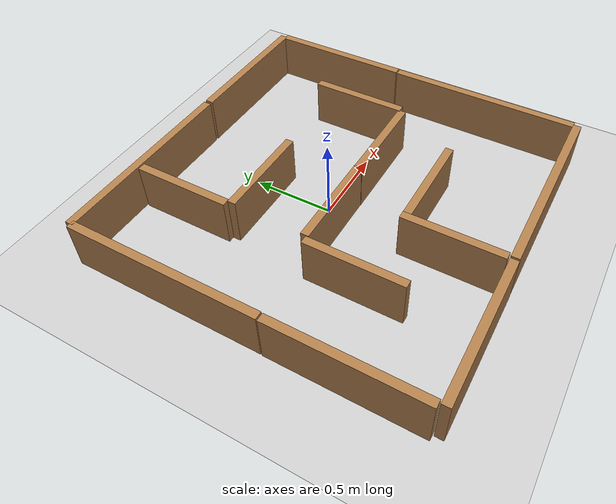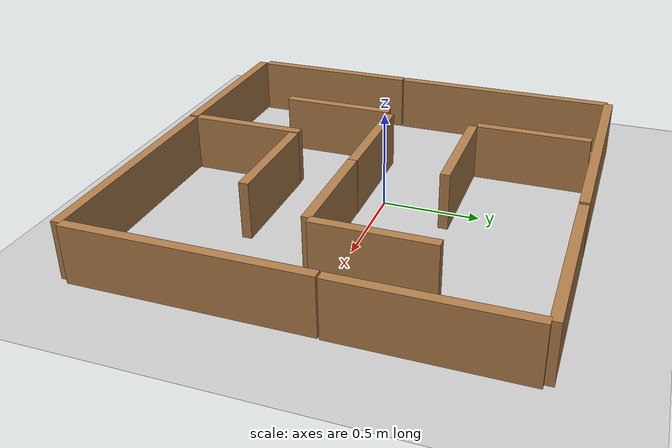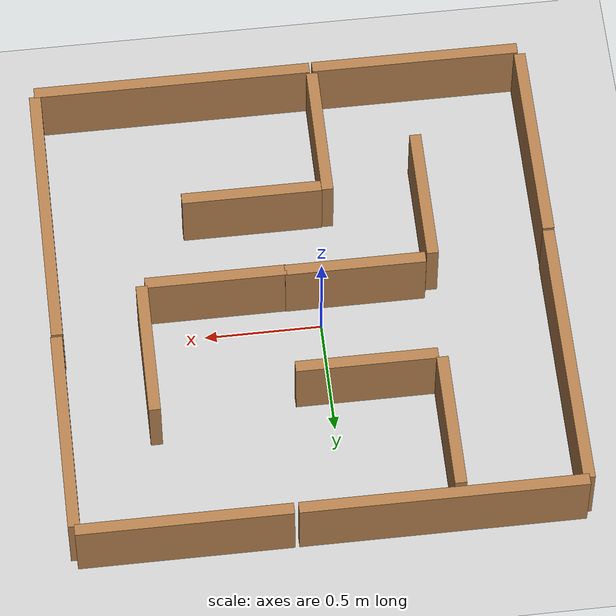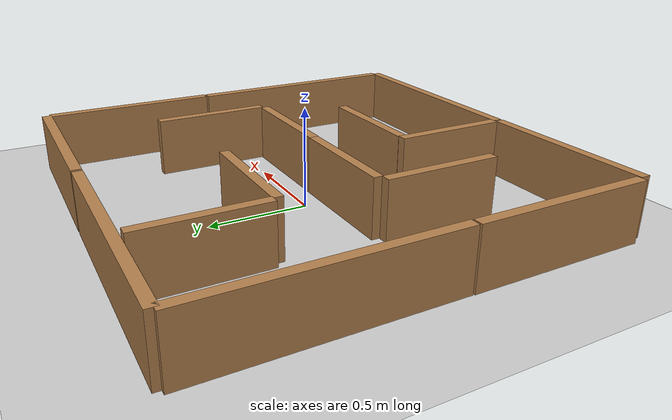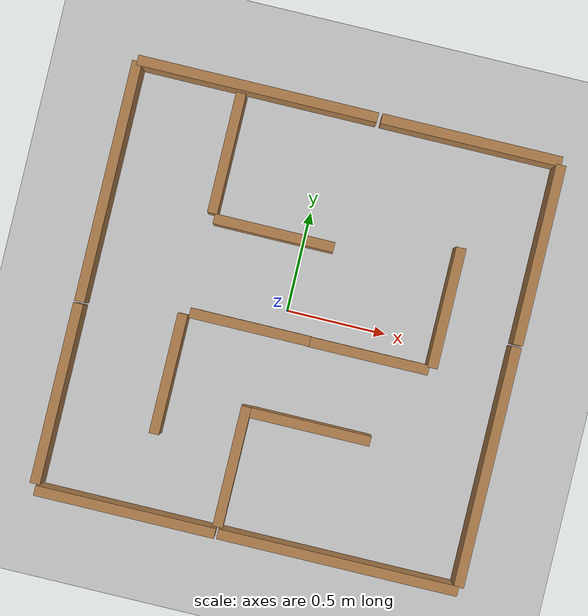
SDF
<sdf version="1.6">
 <world name="default">
  <light name="sun" type="directional">
   <pose>0 0 10 0 -0 0</pose>
   <diffuse>0.8 0.8 0.8 1</diffuse>
   <specular>0.2 0.2 0.2 1</specular>
   <attenuation>
    <range>1000</range>
    <constant>0.9</constant>
    <linear>0.01</linear>
    <quadratic>0.001</quadratic>
   </attenuation>
   <direction>-0.5 0.1 -0.9</direction>
  </light>
  <model name="ground_plane">
   <static>1</static>
   <link name="link">
    <collision name="collision">
     <geometry><plane><normal>0 0 1</normal><size>100 100</size></plane></geometry>
     <surface>
      <contact><collide_bitmask>65535</collide_bitmask></contact>
      <friction><ode><mu>100</mu><mu2>50</mu2></ode></friction>
     </surface>
    </collision>
    <visual name="visual">
     <cast_shadows>0</cast_shadows>
     <geometry><plane><normal>0 0 1</normal><size>100 100</size></plane></geometry>
     <material>
      <script><uri>file://media/materials/scripts/gazebo.material</uri><name>Gazebo/Grey</name></script>
     </material>
    </visual>
   </link>
  </model>
  <gravity>0 0 -9.8</gravity>
  <magnetic_field>6e-06 2.3e-05 -4.2e-05</magnetic_field>
  <atmosphere type="adiabatic"/>
  <physics name="default_physics" default="0" type="ode">
   <max_step_size>0.001</max_step_size>
   <real_time_factor>1</real_time_factor>
   <real_time_update_rate>1000</real_time_update_rate>
  </physics>
  <scene><ambient>0.4 0.4 0.4 1</ambient><background>0.7 0.7 0.7 1</background><shadows>1</shadows></scene>
  <spherical_coordinates>
   <surface_model>EARTH_WGS84</surface_model>
   <latitude_deg>0</latitude_deg>
   <longitude_deg>0</longitude_deg>
   <elevation>0</elevation>
   <heading_deg>0</heading_deg>
  </spherical_coordinates>
  <model name="wall0m60_1">
   <pose>-0.1495 0.352291 0 0 -0 0</pose>
   <link name="Wall_0">
    <collision name="Wall_0_Collision">
     <geometry><box><size>0.6 0.05 0.3</size></box></geometry>
     <pose>0 0 0.15 0 -0 0</pose>
    </collision>
    <visual name="Wall_0_Visual">
     <pose>0 0 0.15 0 -0 0</pose>
     <geometry><box><size>0.6 0.05 0.3</size></box></geometry>
     <material>
      <script><uri>file://media/materials/scripts/gazebo.material</uri><name>Gazebo/Wood</name></script>
      <ambient>1 1 1 1</ambient>
     </material>
     <meta><layer>0</layer></meta>
    </visual>
   </link>
   <static>1</static>
  </model>
  <model name="wall0m90_1">
   <pose>-0.537193 -1.1331 0 0 -0 0</pose>
   <link name="Wall_0">
    <collision name="Wall_0_Collision">
     <geometry><box><size>0.9 0.05 0.3</size></box></geometry>
     <pose>0 0 0.15 0 -0 0</pose>
    </collision>
    <visual name="Wall_0_Visual">
     <pose>0 0 0.15 0 -0 0</pose>
     <geometry><box><size>0.9 0.05 0.3</size></box></geometry>
     <material>
      <script><uri>file://media/materials/scripts/gazebo.material</uri><name>Gazebo/Wood</name></script>
      <ambient>1 1 1 1</ambient>
     </material>
     <meta><layer>0</layer></meta>
    </visual>
   </link>
   <static>1</static>
  </model>
  <model name="wall0m60_2">
   <pose>-0.463206 0.675222 0.003503 0 -0 1.57</pose>
   <link name="Wall_0">
    <collision name="Wall_0_Collision">
     <geometry><box><size>0.6 0.05 0.3</size></box></geometry>
     <pose>0 0 0.15 0 -0 0</pose>
    </collision>
    <visual name="Wall_0_Visual">
     <pose>0 0 0.15 0 -0 0</pose>
     <geometry><box><size>0.6 0.05 0.3</size></box></geometry>
     <material>
      <script><uri>file://media/materials/scripts/gazebo.material</uri><name>Gazebo/Wood</name></script>
      <ambient>1 1 1 1</ambient>
     </material>
     <meta><layer>0</layer></meta>
    </visual>
   </link>
   <static>1</static>
  </model>
  <model name="wall1m20">
   <pose>-0.390642 1.01382 0 0 -0 0</pose>
   <link name="Wall_0">
    <collision name="Wall_0_Collision">
     <geometry><box><size>1.2 0.05 0.3</size></box></geometry>
     <pose>0 0 0.15 0 -0 0</pose>
    </collision>
    <visual name="Wall_0_Visual">
     <pose>0 0 0.15 0 -0 0</pose>
     <geometry><box><size>1.2 0.05 0.3</size></box></geometry>
     <material>
      <script><uri>file://media/materials/scripts/gazebo.material</uri><name>Gazebo/Wood</name></script>
      <ambient>1 1 1 1</ambient>
     </material>
     <meta><layer>0</layer></meta>
    </visual>
   </link>
   <static>1</static>
  </model>
  <model name="wall1m20_0">
   <pose>-0.989789 0.407174 0 0 -0 1.57</pose>
   <link name="Wall_0">
    <collision name="Wall_0_Collision">
     <geometry><box><size>1.2 0.05 0.3</size></box></geometry>
     <pose>0 0 0.15 0 -0 0</pose>
    </collision>
    <visual name="Wall_0_Visual">
     <pose>0 0 0.15 0 -0 0</pose>
     <geometry><box><size>1.2 0.05 0.3</size></box></geometry>
     <material>
      <script><uri>file://media/materials/scripts/gazebo.material</uri><name>Gazebo/Wood</name></script>
      <ambient>1 1 1 1</ambient>
     </material>
     <meta><layer>0</layer></meta>
    </visual>
   </link>
   <static>1</static>
  </model>
  <model name="wall0m90">
   <pose>-0.992985 -0.651546 0 0 -0 1.57</pose>
   <link name="Wall_0">
    <collision name="Wall_0_Collision">
     <geometry><box><size>0.9 0.05 0.3</size></box></geometry>
     <pose>0 0 0.15 0 -0 0</pose>
    </collision>
    <visual name="Wall_0_Visual">
     <pose>0 0 0.15 0 -0 0</pose>
     <geometry><box><size>0.9 0.05 0.3</size></box></geometry>
     <material>
      <script><uri>file://media/materials/scripts/gazebo.material</uri><name>Gazebo/Wood</name></script>
      <ambient>1 1 1 1</ambient>
     </material>
     <meta><layer>0</layer></meta>
    </visual>
   </link>
   <static>1</static>
  </model>
  <model name="wall1m20_clone">
   <pose>0.525214 -1.13124 0 0 -0 0</pose>
   <link name="Wall_0">
    <collision name="Wall_0_Collision">
     <geometry><box><size>1.2 0.05 0.3</size></box></geometry>
     <pose>0 0 0.15 0 -0 0</pose>
    </collision>
    <visual name="Wall_0_Visual">
     <pose>0 0 0.15 0 -0 0</pose>
     <geometry><box><size>1.2 0.05 0.3</size></box></geometry>
     <material>
      <script><uri>file://media/materials/scripts/gazebo.material</uri><name>Gazebo/Wood</name></script>
      <ambient>1 1 1 1</ambient>
     </material>
     <meta><layer>0</layer></meta>
    </visual>
   </link>
   <static>1</static>
  </model>
  <model name="wall1m20_0_clone">
   <pose>1.1237 -0.51003 0 0 -0 1.57</pose>
   <link name="Wall_0">
    <collision name="Wall_0_Collision">
     <geometry><box><size>1.2 0.05 0.3</size></box></geometry>
     <pose>0 0 0.15 0 -0 0</pose>
    </collision>
    <visual name="Wall_0_Visual">
     <pose>0 0 0.15 0 -0 0</pose>
     <geometry><box><size>1.2 0.05 0.3</size></box></geometry>
     <material>
      <script><uri>file://media/materials/scripts/gazebo.material</uri><name>Gazebo/Wood</name></script>
      <ambient>1 1 1 1</ambient>
     </material>
     <meta><layer>0</layer></meta>
    </visual>
   </link>
   <static>1</static>
  </model>
  <model name="wall0m90_clone">
   <pose>1.12838 0.548991 0 0 -0 1.57</pose>
   <link name="Wall_0">
    <collision name="Wall_0_Collision">
     <geometry><box><size>0.9 0.05 0.3</size></box></geometry>
     <pose>0 0 0.15 0 -0 0</pose>
    </collision>
    <visual name="Wall_0_Visual">
     <pose>0 0 0.15 0 -0 0</pose>
     <geometry><box><size>0.9 0.05 0.3</size></box></geometry>
     <material>
      <script><uri>file://media/materials/scripts/gazebo.material</uri><name>Gazebo/Wood</name></script>
      <ambient>1 1 1 1</ambient>
     </material>
     <meta><layer>0</layer></meta>
    </visual>
   </link>
   <static>1</static>
  </model>
  <model name="wall0m90_1_clone">
   <pose>0.678095 1.01413 0 0 -0 0</pose>
   <link name="Wall_0">
    <collision name="Wall_0_Collision">
     <geometry><box><size>0.9 0.05 0.3</size></box></geometry>
     <pose>0 0 0.15 0 -0 0</pose>
    </collision>
    <visual name="Wall_0_Visual">
     <pose>0 0 0.15 0 -0 0</pose>
     <geometry><box><size>0.9 0.05 0.3</size></box></geometry>
     <material>
      <script><uri>file://media/materials/scripts/gazebo.material</uri><name>Gazebo/Wood</name></script>
      <ambient>1 1 1 1</ambient>
     </material>
     <meta><layer>0</layer></meta>
    </visual>
   </link>
   <static>1</static>
  </model>
  <model name="wall0m60_1_clone">
   <pose>-0.156378 -0.11924 0 0 -0 0</pose>
   <link name="Wall_0">
    <collision name="Wall_0_Collision">
     <geometry><box><size>0.6 0.05 0.3</size></box></geometry>
     <pose>0 0 0.15 0 -0 0</pose>
    </collision>
    <visual name="Wall_0_Visual">
     <pose>0 0 0.15 0 -0 0</pose>
     <geometry><box><size>0.6 0.05 0.3</size></box></geometry>
     <material>
      <script><uri>file://media/materials/scripts/gazebo.material</uri><name>Gazebo/Wood</name></script>
      <ambient>1 1 1 1</ambient>
     </material>
     <meta><layer>0</layer></meta>
    </visual>
   </link>
   <static>1</static>
  </model>
  <model name="wall0m60_2_clone">
   <pose>-0.488292 -0.431782 0.003503 0 -0 1.57</pose>
   <link name="Wall_0">
    <collision name="Wall_0_Collision">
     <geometry><box><size>0.6 0.05 0.3</size></box></geometry>
     <pose>0 0 0.15 0 -0 0</pose>
    </collision>
    <visual name="Wall_0_Visual">
     <pose>0 0 0.15 0 -0 0</pose>
     <geometry><box><size>0.6 0.05 0.3</size></box></geometry>
     <material>
      <script><uri>file://media/materials/scripts/gazebo.material</uri><name>Gazebo/Wood</name></script>
      <ambient>1 1 1 1</ambient>
     </material>
     <meta><layer>0</layer></meta>
    </visual>
   </link>
   <static>1</static>
  </model>
  <model name="wall0m60_2_clone_clone">
   <pose>-0.082463 -0.798387 0.003503 0 -0 1.57</pose>
   <link name="Wall_0">
    <collision name="Wall_0_Collision">
     <geometry><box><size>0.6 0.05 0.3</size></box></geometry>
     <pose>0 0 0.15 0 -0 0</pose>
    </collision>
    <visual name="Wall_0_Visual">
     <pose>0 0 0.15 0 -0 0</pose>
     <geometry><box><size>0.6 0.05 0.3</size></box></geometry>
     <material>
      <script><uri>file://media/materials/scripts/gazebo.material</uri><name>Gazebo/Wood</name></script>
      <ambient>1 1 1 1</ambient>
     </material>
     <meta><layer>0</layer></meta>
    </visual>
   </link>
   <static>1</static>
  </model>
  <model name="wall0m60_1_clone_clone">
   <pose>0.241686 -0.522213 0 0 -0 0</pose>
   <link name="Wall_0">
    <collision name="Wall_0_Collision">
     <geometry><box><size>0.6 0.05 0.3</size></box></geometry>
     <pose>0 0 0.15 0 -0 0</pose>
    </collision>
    <visual name="Wall_0_Visual">
     <pose>0 0 0.15 0 -0 0</pose>
     <geometry><box><size>0.6 0.05 0.3</size></box></geometry>
     <material>
      <script><uri>file://media/materials/scripts/gazebo.material</uri><name>Gazebo/Wood</name></script>
      <ambient>1 1 1 1</ambient>
     </material>
     <meta><layer>0</layer></meta>
    </visual>
   </link>
   <static>1</static>
  </model>
  <model name="wall0m60_1_clone_clone_0">
   <pose>0.436168 -0.120868 0 0 -0 0</pose>
   <link name="Wall_0">
    <collision name="Wall_0_Collision">
     <geometry><box><size>0.6 0.05 0.3</size></box></geometry>
     <pose>0 0 0.15 0 -0 0</pose>
    </collision>
    <visual name="Wall_0_Visual">
     <pose>0 0 0.15 0 -0 0</pose>
     <geometry><box><size>0.6 0.05 0.3</size></box></geometry>
     <material>
      <script><uri>file://media/materials/scripts/gazebo.material</uri><name>Gazebo/Wood</name></script>
      <ambient>1 1 1 1</ambient>
     </material>
     <meta><layer>0</layer></meta>
    </visual>
   </link>
   <static>1</static>
  </model>
  <model name="wall0m60_2_clone_clone_0">
   <pose>0.751033 0.194486 0.003503 0 -0 1.57</pose>
   <link name="Wall_0">
    <collision name="Wall_0_Collision">
     <geometry><box><size>0.6 0.05 0.3</size></box></geometry>
     <pose>0 0 0.15 0 -0 0</pose>
    </collision>
    <visual name="Wall_0_Visual">
     <pose>0 0 0.15 0 -0 0</pose>
     <geometry><box><size>0.6 0.05 0.3</size></box></geometry>
     <material>
      <script><uri>file://media/materials/scripts/gazebo.material</uri><name>Gazebo/Wood</name></script>
      <ambient>1 1 1 1</ambient>
     </material>
     <meta><layer>0</layer></meta>
    </visual>
   </link>
   <static>1</static>
  </model>
 </world>
</sdf>
